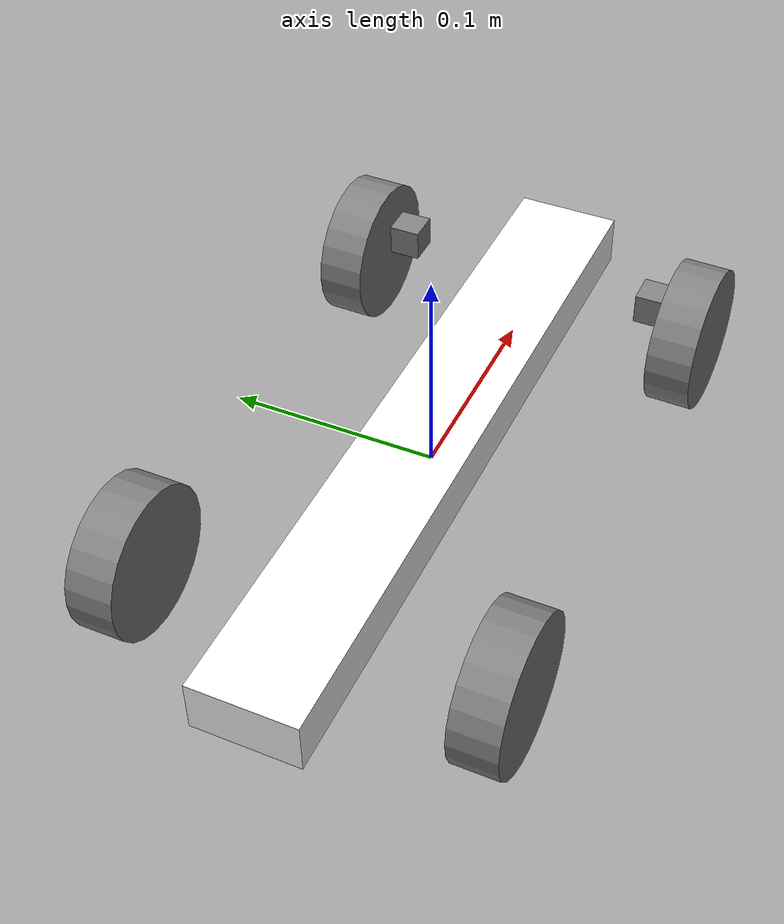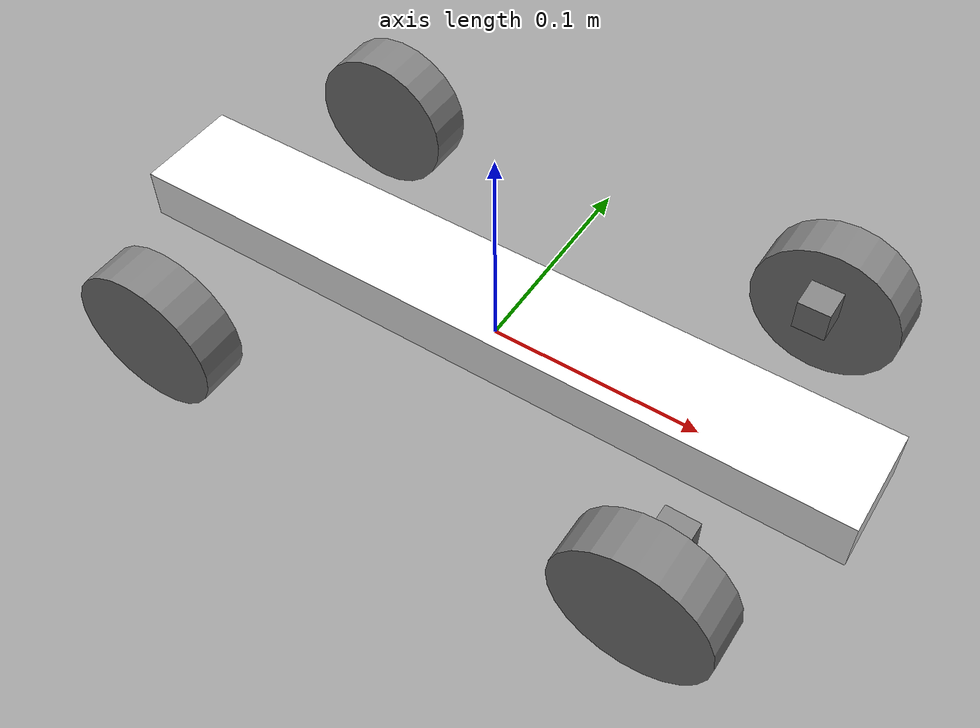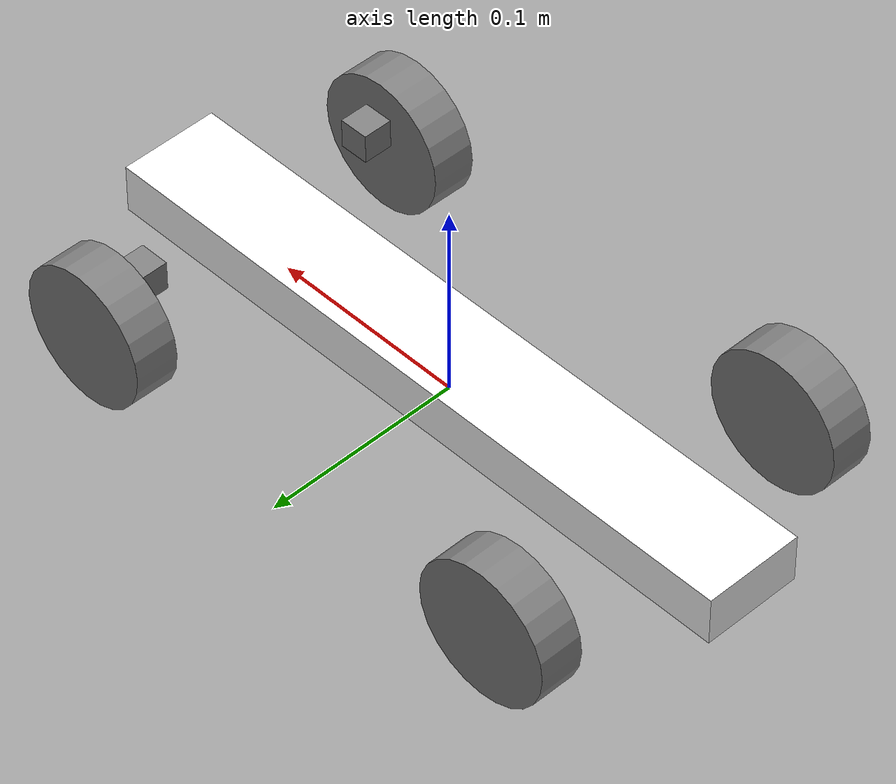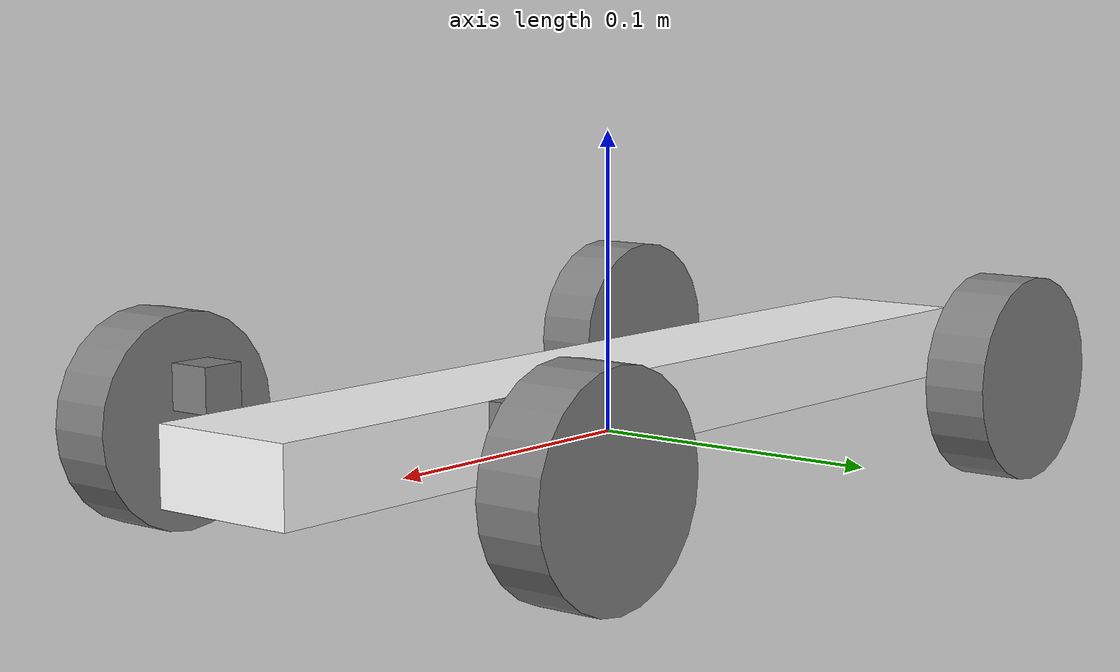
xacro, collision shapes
<?xml version="1.0" encoding="utf-8"?>
<robot name="yahboom_bot_1" xmlns:xacro="http://ros.org/wiki/xacro">
  <!--xacro:include filename="$(find yahboomcar_description)/urdf/yahboomcar_R2.gazebo.xacro"/-->

  <!--Colour Descriptions-->
    <material name="white">
        <color rgba="1 1 1 1"/>
    </material>
    <material name="black">
        <color rgba="0 0 0 1"/>
    </material>
    <material name="grey">
        <color rgba="0.5 0.5 0.5 1"/>
    </material>

  <!--Base Link and Chassis-->

  <link
    name="base_link">
  </link>

  <joint name="chassis_joint" type="fixed">
      <parent link="base_link"/>
      <child link="chassis"/>
      <origin xyz="0 0 0"/>
  </joint>

  <link name="chassis">
    <inertial>
      <origin
        xyz="-0.014025 -0.00011707 0.082168"
        rpy="0 0 0" />
      <mass
        value="0.52447" />
      <inertia
        ixx="0.00066245"
        ixy="-3.1852E-08"
        ixz="-4.6503E-05"
        iyy="0.0012486"
        iyz="-3.356E-08"
        izz="0.0018052" />
    </inertial>
    <visual>
      <origin
        xyz="0 0 0"
        rpy="0 0 0" />
      <geometry>
        <mesh
          filename="package://yahboom_bot_1/meshes/Ackermann/base_link.STL" />
      </geometry>
      <material name="white"/>
    </visual>
    <collision>
      <origin
        xyz="0 0 0.0125"
        rpy="0 0 0" />
      <geometry>
        <box size="0.35 0.05 0.025" />
      </geometry>
    </collision>
  </link>

  <!--Back Right Wheel-->

  <link name="back_right_link">
    <inertial>
      <origin
        xyz="3.8959E-08 0.0015615 -6.3774E-08"
        rpy="0 0 0" />
      <mass
        value="0.060236" />
      <inertia
        ixx="2.5326E-05"
        ixy="-2.701E-10"
        ixz="3.3546E-09"
        iyy="4.4342E-05"
        iyz="-2.9324E-10"
        izz="2.531E-05" />
    </inertial>
    <visual>
      <origin
        xyz="0 0 0"
        rpy="0 0 0" />
      <geometry>
        <mesh
          filename="package://yahboom_bot_1/meshes/Ackermann/back_right_link.STL" />
      </geometry>
      <material name="grey"/>
    </visual>
    <collision>
      <origin
        xyz="0 0 0"
        rpy="${pi/2} 0 0" />
      <geometry>
        <cylinder radius="0.035" length="0.022" />
      </geometry>
    </collision>
  </link>
  <joint name="back_right_joint" type="continuous">
    <origin
      xyz="-0.11607 -0.08425 0.0125"
      rpy="0 0 0" />
    <parent
      link="chassis" />
    <child
      link="back_right_link" />
    <axis
      xyz="0 1 0" />

  </joint>

  <!--Back Left Wheel-->
  <link name="back_left_link">
    <inertial>
      <origin
        xyz="-6.87042718550135E-08 -0.00156153690070754 3.00324059371304E-08"
        rpy="0 0 0" />
      <mass
        value="0.0602360431220635" />
      <inertia
        ixx="2.53100986719244E-05"
        ixy="-3.65138701967536E-11"
        ixz="1.15601374112124E-09"
        iyy="4.43431918315874E-05"
        iyz="-7.01985398840287E-11"
        izz="2.53280330627738E-05" />
    </inertial>
    <visual>
      <origin
        xyz="0 0 0"
        rpy="${pi} 0 0" />
      <geometry>
        <mesh
          filename="package://yahboom_bot_1/meshes/Ackermann/back_right_link.STL" />
      </geometry>
      <material name="grey"/>
    </visual>
    <collision>
      <origin
        xyz="0 0 0"
        rpy="${pi/2} 0 0" />
      <geometry>
        <cylinder radius="0.035" length="0.022" />
      </geometry>
    </collision>
  </link>
  <joint name="back_left_joint" type="continuous">
    <origin
      xyz="-0.11607 0.08425 0.0125"
      rpy="0 0 0" />
    <parent
      link="chassis" />
    <child
      link="back_left_link" />
    <axis
      xyz="0 1 0" />

  </joint>

  <!--Front Left Steering Joint-->
  <link name="front_left_steer">
    <inertial>
      <origin
        xyz="-0.0044676 0.0031203 -0.014101"
        rpy="0 0 0" />
      <mass
        value="0.002176" />
      <inertia
        ixx="1.4001E-07"
        ixy="-7.8357E-08"
        ixz="1.1741E-12"
        iyy="2.7801E-07"
        iyz="7.8069E-12"
        izz="2.909E-07" />
    </inertial>
    <visual>
      <origin
        xyz="0 0 0"
        rpy="0 0 0" />
      <geometry>
        <mesh
          filename="package://yahboom_bot_1/meshes/Ackermann/front_left_steer.STL" />
      </geometry>
      <material
        name="grey" />
    </visual>
    <collision>
      <origin
        xyz="0 0 0"
        rpy="0 0 0" />
      <geometry>
        <box size="0.015 0.015 0.015" />
      </geometry>
    </collision>
  </link>
  <joint name="front_left_steer_joint" type="revolute">
    <origin
      xyz="0.11922 0.065 0.0262"
      rpy="0 0 0" />
    <parent
      link="chassis" />
    <child
      link="front_left_steer" />
    <axis
      xyz="0 0 1" />
    <limit
      lower="-0.6"
      upper="0.6"
      effort="10"
      velocity="1" />

  </joint>

  <!--Front Left Wheel Joint-->
  <link name="front_left_wheel">
    <inertial>
      <origin
        xyz="-6.1417E-08 -0.0048115 4.113E-08"
        rpy="0 0 0" />
      <mass
        value="0.060236" />
      <inertia
        ixx="2.531E-05"
        ixy="2.9987E-10"
        ixz="3.7781E-09"
        iyy="4.4342E-05"
        iyz="2.6181E-10"
        izz="2.5326E-05" />
    </inertial>
    <visual>
      <origin
        xyz="0 0 0"
        rpy="${pi} 0 0" />
      <geometry>
        <mesh
          filename="package://yahboom_bot_1/meshes/Ackermann/back_right_link.STL" />
      </geometry>
      <material name="grey"/>
    </visual>
    <collision>
      <origin
        xyz="0 0 0"
        rpy="${pi/2} 0 0" />
      <geometry>
        <cylinder radius="0.035" length="0.022" />
      </geometry>
    </collision>
  </link>
  <joint name="front_left_wheel_joint" type="continuous">
    <origin
      xyz="0.00022897 0.0228 -0.0141"
      rpy="0 0 -0.010042" />
    <parent
      link="front_left_steer" />
    <child
      link="front_left_wheel" />
    <axis
      xyz="0 1 0" />
  </joint>

  <!--Front Right Steering Joint-->
  <link name="front_right_steer">
    <inertial>
      <origin
        xyz="-0.0045387 -0.0030159 -0.012099"
        rpy="0 0 0" />
      <mass
        value="0.002176" />
      <inertia
        ixx="1.4372E-07"
        ixy="8.1469E-08"
        ixz="-1.0492E-12"
        iyy="2.7431E-07"
        iyz="7.8675E-12"
        izz="2.909E-07" />
    </inertial>
    <visual>
      <origin
        xyz="0 0 0"
        rpy="0 0 ${pi}" />
      <geometry>
        <mesh
          filename="package://yahboom_bot_1/meshes/Ackermann/front_left_steer.STL" />
      </geometry>
      <material name="grey"/>
    </visual>
    <collision>
      <origin
        xyz="0 0 0"
        rpy="0 0 0" />
      <geometry>
        <box size="0.015 0.015 0.015" />
      </geometry>
    </collision>
  </link>
  <joint name="front_right_steer_joint" type="revolute">
    <origin
      xyz="0.11922 -0.065 0.0242"
      rpy="0 0 0" />
    <parent
      link="chassis" />
    <child
      link="front_right_steer" />
    <axis
      xyz="0 0 1" />
    <limit
      lower="-0.6"
      upper="0.6"
      effort="10"
      velocity="1" />

  </joint>

  <!--Front Right Wheel Joint-->
  <link name="front_right_wheel">
    <inertial>
      <origin
        xyz="5.5753E-08 0.0015615 -5.0453E-08"
        rpy="0 0 0" />
      <mass
        value="0.060236" />
      <inertia
        ixx="2.5325E-05"
        ixy="5.201E-11"
        ixz="7.1484E-09"
        iyy="4.4343E-05"
        iyz="6.0924E-11"
        izz="2.5314E-05" />
    </inertial>
    <visual>
      <origin
        xyz="0 0 0"
        rpy="0 0 0" />
      <geometry>
        <mesh
          filename="package://yahboom_bot_1/meshes/Ackermann/back_right_link.STL" />
      </geometry>
      <material name="grey"/>
    </visual>
    <collision>
      <origin
        xyz="0 0 0"
        rpy="${pi/2} 0 0" />
      <geometry>
        <cylinder radius="0.035" length="0.022" />
      </geometry>
    </collision>
  </link>
  <joint name="front_right_wheel_joint" type="continuous">
    <origin
      xyz="-0.00025662 -0.019549 -0.0121"
      rpy="0 0 -0.013126" />
    <parent
      link="front_right_steer" />
    <child
      link="front_right_wheel" />
    <axis
      xyz="0 1 0" />

  </joint>

</robot>
